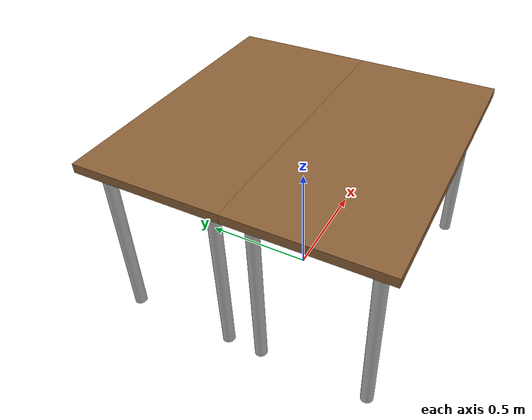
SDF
<?xml version="1.0" ?>
<sdf version="1.6">

  <model name="table_square_48x48">
    <static>true</static>

    <!-- ================= Table A (centered at +Y/2) ================= -->
    <link name="tableA">
      <!-- Tabletop -->
      <visual name="tableA_top_vis">
        <pose>0 0.3048 0.74295 0 0 0</pose>
        <geometry><box><size>1.2192 0.6096 0.0381</size></box></geometry>
        <material>
          <ambient>0.25 0.18 0.12 1</ambient>
          <diffuse>0.55 0.38 0.22 1</diffuse>
        </material>
      </visual>
      <collision name="tableA_top_col">
        <pose>0 0.3048 0.74295 0 0 0</pose>
        <geometry><box><size>1.2192 0.6096 0.0381</size></box></geometry>
      </collision>

      <!-- Legs -->
      <!-- Precomputed: leg_x = ±0.5334, leg_y = ±0.2286, z=0.36195 -->
      <visual name="tableA_leg_fr_vis"><pose>0.5334 0.5334 0.36195 0 0 0</pose><geometry><cylinder><radius>0.0254</radius><length>0.7239</length></cylinder></geometry></visual>
      <visual name="tableA_leg_fl_vis"><pose>-0.5334 0.5334 0.36195 0 0 0</pose><geometry><cylinder><radius>0.0254</radius><length>0.7239</length></cylinder></geometry></visual>
      <visual name="tableA_leg_br_vis"><pose>0.5334 0.0762 0.36195 0 0 0</pose><geometry><cylinder><radius>0.0254</radius><length>0.7239</length></cylinder></geometry></visual>
      <visual name="tableA_leg_bl_vis"><pose>-0.5334 0.0762 0.36195 0 0 0</pose><geometry><cylinder><radius>0.0254</radius><length>0.7239</length></cylinder></geometry></visual>

      <collision name="tableA_leg_fr_col"><pose>0.5334 0.5334 0.36195 0 0 0</pose><geometry><cylinder><radius>0.0254</radius><length>0.7239</length></cylinder></geometry></collision>
      <collision name="tableA_leg_fl_col"><pose>-0.5334 0.5334 0.36195 0 0 0</pose><geometry><cylinder><radius>0.0254</radius><length>0.7239</length></cylinder></geometry></collision>
      <collision name="tableA_leg_br_col"><pose>0.5334 0.0762 0.36195 0 0 0</pose><geometry><cylinder><radius>0.0254</radius><length>0.7239</length></cylinder></geometry></collision>
      <collision name="tableA_leg_bl_col"><pose>-0.5334 0.0762 0.36195 0 0 0</pose><geometry><cylinder><radius>0.0254</radius><length>0.7239</length></cylinder></geometry></collision>
    </link>

    <!-- ================= Table B (centered at -Y/2) ================= -->
    <link name="tableB">
      <!-- Tabletop -->
      <visual name="tableB_top_vis">
        <pose>0 -0.3048 0.74295 0 0 0</pose>
        <geometry><box><size>1.2192 0.6096 0.0381</size></box></geometry>
        <material>
          <ambient>0.25 0.18 0.12 1</ambient>
          <diffuse>0.55 0.38 0.22 1</diffuse>
        </material>
      </visual>
      <collision name="tableB_top_col">
        <pose>0 -0.3048 0.74295 0 0 0</pose>
        <geometry><box><size>1.2192 0.6096 0.0381</size></box></geometry>
      </collision>

      <!-- Legs -->
      <visual name="tableB_leg_fr_vis"><pose>0.5334 -0.0762 0.36195 0 0 0</pose><geometry><cylinder><radius>0.0254</radius><length>0.7239</length></cylinder></geometry></visual>
      <visual name="tableB_leg_fl_vis"><pose>-0.5334 -0.0762 0.36195 0 0 0</pose><geometry><cylinder><radius>0.0254</radius><length>0.7239</length></cylinder></geometry></visual>
      <visual name="tableB_leg_br_vis"><pose>0.5334 -0.5334 0.36195 0 0 0</pose><geometry><cylinder><radius>0.0254</radius><length>0.7239</length></cylinder></geometry></visual>
      <visual name="tableB_leg_bl_vis"><pose>-0.5334 -0.5334 0.36195 0 0 0</pose><geometry><cylinder><radius>0.0254</radius><length>0.7239</length></cylinder></geometry></visual>

      <collision name="tableB_leg_fr_col"><pose>0.5334 -0.0762 0.36195 0 0 0</pose><geometry><cylinder><radius>0.0254</radius><length>0.7239</length></cylinder></geometry></collision>
      <collision name="tableB_leg_fl_col"><pose>-0.5334 -0.0762 0.36195 0 0 0</pose><geometry><cylinder><radius>0.0254</radius><length>0.7239</length></cylinder></geometry></collision>
      <collision name="tableB_leg_br_col"><pose>0.5334 -0.5334 0.36195 0 0 0</pose><geometry><cylinder><radius>0.0254</radius><length>0.7239</length></cylinder></geometry></collision>
      <collision name="tableB_leg_bl_col"><pose>-0.5334 -0.5334 0.36195 0 0 0</pose><geometry><cylinder><radius>0.0254</radius><length>0.7239</length></cylinder></geometry></collision>
    </link>
  </model>
</sdf>
